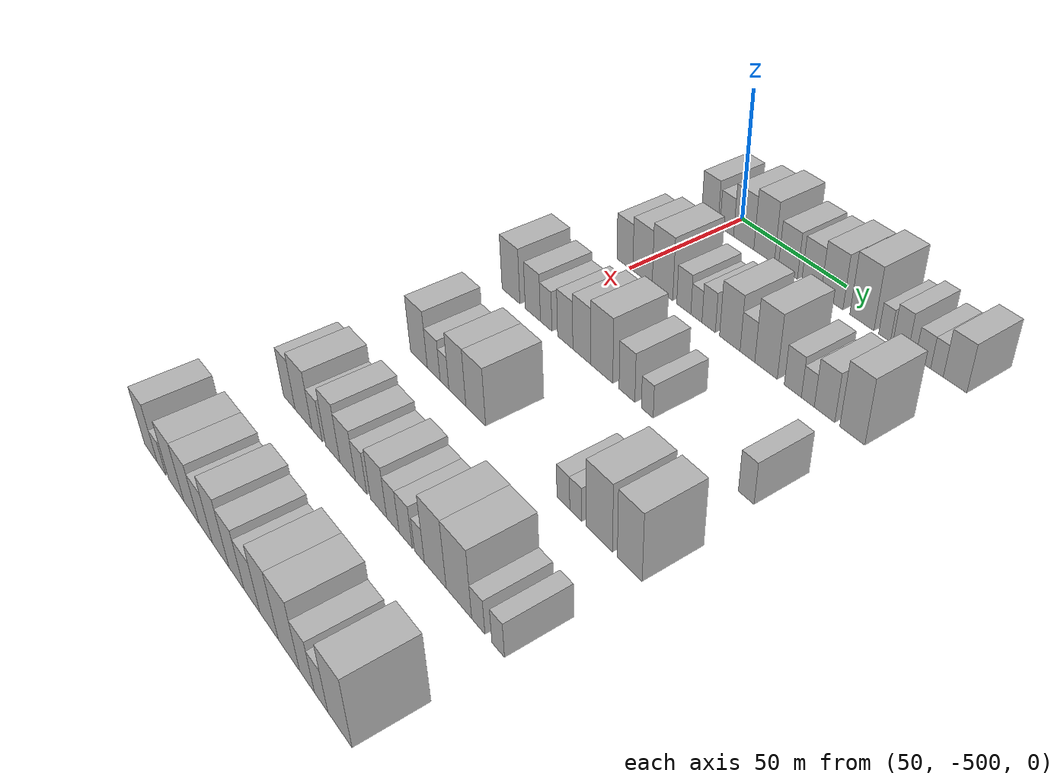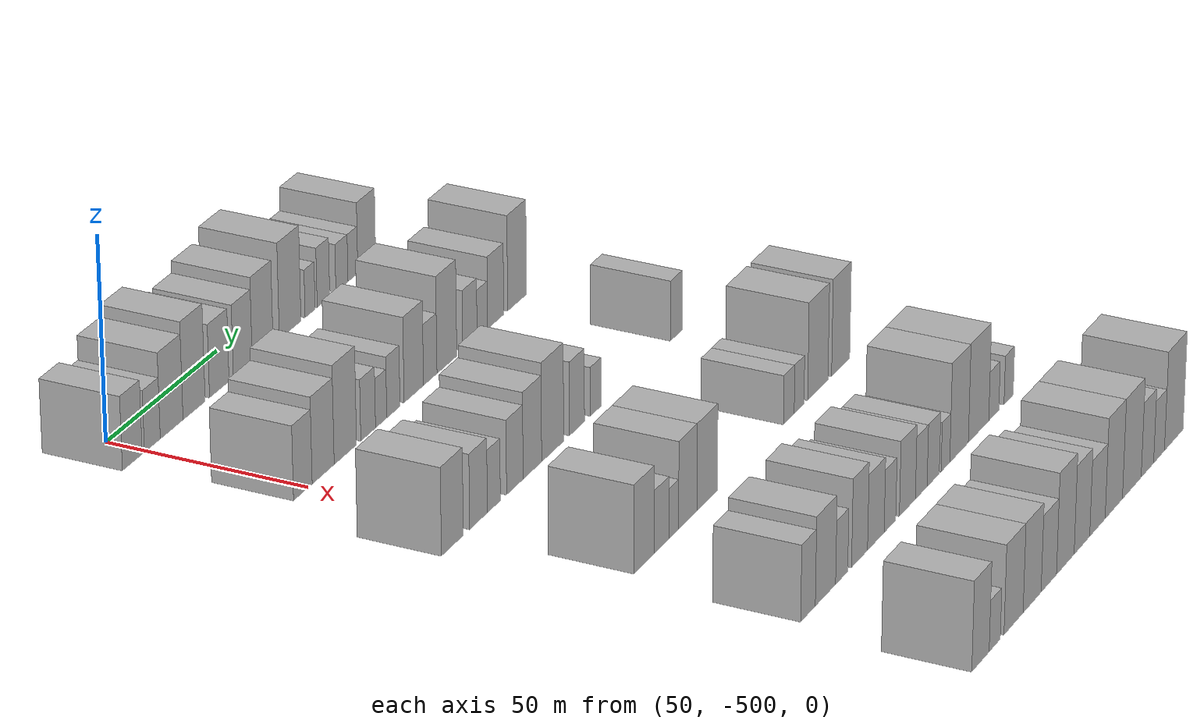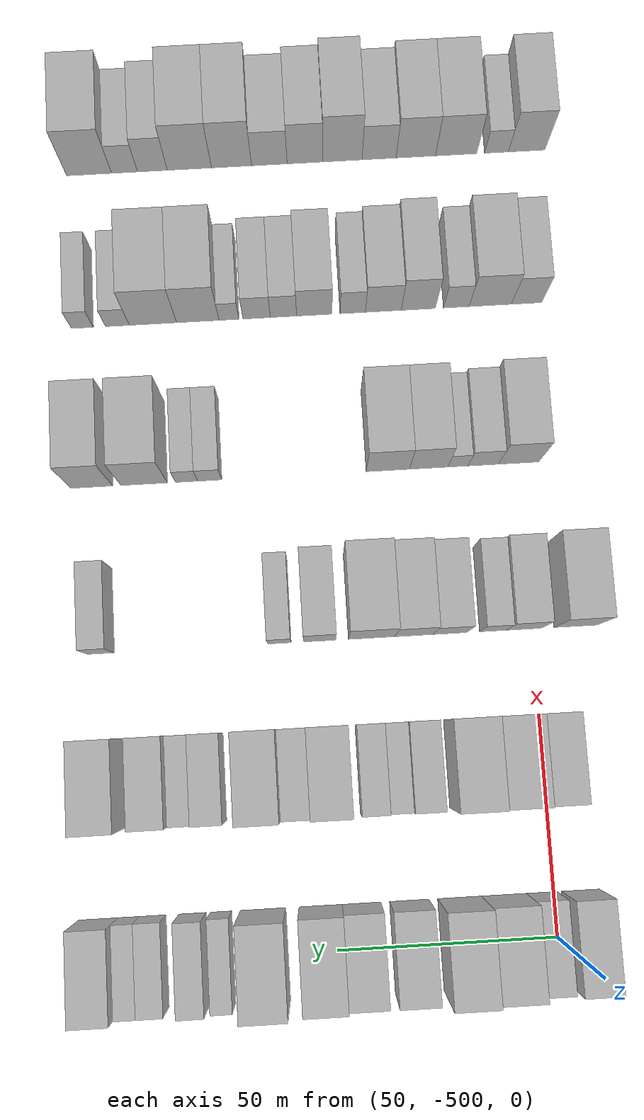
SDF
<sdf version="1.6">
 <world name="default">
  <model name="building_14">
   <static>1</static>
   <pose>50.0000 -506.0313 0 0.000000 0.000000 0.000000</pose>
   <link name="link">
    <pose>0 0 9.00 0 0 0</pose>
    <collision name="collision"><geometry><box><size>20.0000 8.6839 18.0000</size></box></geometry></collision>
    <visual name="visual">
     <cast_shadows>0</cast_shadows>
     <geometry><box><size>20.0000 8.6839 18.0000</size></box></geometry>
     <material>
      <script>
       <uri>model://HANNAS_wall/materials/scripts</uri>
       <uri>model://HANNAS_wall/materials/textures</uri>
       <name>vrc/HANNAS_wall</name>
      </script>
     </material>
    </visual>
   </link>
  </model>
  <model name="building_15">
   <static>1</static>
   <pose>50.0000 -497.1717 0 0.000000 0.000000 0.000000</pose>
   <link name="link">
    <pose>0 0 7.50 0 0 0</pose>
    <collision name="collision"><geometry><box><size>20.0000 7.0353 15.0000</size></box></geometry></collision>
    <visual name="visual">
     <cast_shadows>0</cast_shadows>
     <geometry><box><size>20.0000 7.0353 15.0000</size></box></geometry>
     <material>
      <script>
       <uri>model://HANNAS_wall/materials/scripts</uri>
       <uri>model://HANNAS_wall/materials/textures</uri>
       <name>vrc/HANNAS_wall</name>
      </script>
     </material>
    </visual>
   </link>
  </model>
  <model name="building_16">
   <static>1</static>
   <pose>50.0000 -488.5574 0 0.000000 0.000000 0.000000</pose>
   <link name="link">
    <pose>0 0 10.50 0 0 0</pose>
    <collision name="collision"><geometry><box><size>20.0000 10.1933 21.0000</size></box></geometry></collision>
    <visual name="visual">
     <cast_shadows>0</cast_shadows>
     <geometry><box><size>20.0000 10.1933 21.0000</size></box></geometry>
     <material>
      <script>
       <uri>model://HANNAS_wall/materials/scripts</uri>
       <uri>model://HANNAS_wall/materials/textures</uri>
       <name>vrc/HANNAS_wall</name>
      </script>
     </material>
    </visual>
   </link>
  </model>
  <model name="building_17">
   <static>1</static>
   <pose>50.0000 -478.4403 0 0.000000 0.000000 0.000000</pose>
   <link name="link">
    <pose>0 0 12.00 0 0 0</pose>
    <collision name="collision"><geometry><box><size>20.0000 10.0410 24.0000</size></box></geometry></collision>
    <visual name="visual">
     <cast_shadows>0</cast_shadows>
     <geometry><box><size>20.0000 10.0410 24.0000</size></box></geometry>
     <material>
      <script>
       <uri>model://HANNAS_wall/materials/scripts</uri>
       <uri>model://HANNAS_wall/materials/textures</uri>
       <name>vrc/HANNAS_wall</name>
      </script>
     </material>
    </visual>
   </link>
  </model>
  <model name="building_18">
   <static>1</static>
   <pose>50.0000 -466.9310 0 0.000000 0.000000 0.000000</pose>
   <link name="link">
    <pose>0 0 9.00 0 0 0</pose>
    <collision name="collision"><geometry><box><size>20.0000 8.9775 18.0000</size></box></geometry></collision>
    <visual name="visual">
     <cast_shadows>0</cast_shadows>
     <geometry><box><size>20.0000 8.9775 18.0000</size></box></geometry>
     <material>
      <script>
       <uri>model://HANNAS_wall/materials/scripts</uri>
       <uri>model://HANNAS_wall/materials/textures</uri>
       <name>vrc/HANNAS_wall</name>
      </script>
     </material>
    </visual>
   </link>
  </model>
  <model name="building_19">
   <static>1</static>
   <pose>50.0000 -456.0338 0 0.000000 0.000000 0.000000</pose>
   <link name="link">
    <pose>0 0 9.00 0 0 0</pose>
    <collision name="collision"><geometry><box><size>20.0000 8.8170 18.0000</size></box></geometry></collision>
    <visual name="visual">
     <cast_shadows>0</cast_shadows>
     <geometry><box><size>20.0000 8.8170 18.0000</size></box></geometry>
     <material>
      <script>
       <uri>model://HANNAS_wall/materials/scripts</uri>
       <uri>model://HANNAS_wall/materials/textures</uri>
       <name>vrc/HANNAS_wall</name>
      </script>
     </material>
    </visual>
   </link>
  </model>
  <model name="building_20">
   <static>1</static>
   <pose>50.0000 -446.7315 0 0.000000 0.000000 0.000000</pose>
   <link name="link">
    <pose>0 0 10.50 0 0 0</pose>
    <collision name="collision"><geometry><box><size>20.0000 9.7877 21.0000</size></box></geometry></collision>
    <visual name="visual">
     <cast_shadows>0</cast_shadows>
     <geometry><box><size>20.0000 9.7877 21.0000</size></box></geometry>
     <material>
      <script>
       <uri>model://HANNAS_wall/materials/scripts</uri>
       <uri>model://HANNAS_wall/materials/textures</uri>
       <name>vrc/HANNAS_wall</name>
      </script>
     </material>
    </visual>
   </link>
  </model>
  <model name="building_21">
   <static>1</static>
   <pose>50.0000 -433.6766 0 0.000000 0.000000 0.000000</pose>
   <link name="link">
    <pose>0 0 12.00 0 0 0</pose>
    <collision name="collision"><geometry><box><size>20.0000 10.3219 24.0000</size></box></geometry></collision>
    <visual name="visual">
     <cast_shadows>0</cast_shadows>
     <geometry><box><size>20.0000 10.3219 24.0000</size></box></geometry>
     <material>
      <script>
       <uri>model://HANNAS_wall/materials/scripts</uri>
       <uri>model://HANNAS_wall/materials/textures</uri>
       <name>vrc/HANNAS_wall</name>
      </script>
     </material>
    </visual>
   </link>
  </model>
  <model name="building_22">
   <static>1</static>
   <pose>50.0000 -424.0932 0 0.000000 0.000000 0.000000</pose>
   <link name="link">
    <pose>0 0 6.00 0 0 0</pose>
    <collision name="collision"><geometry><box><size>20.0000 4.8448 12.0000</size></box></geometry></collision>
    <visual name="visual">
     <cast_shadows>0</cast_shadows>
     <geometry><box><size>20.0000 4.8448 12.0000</size></box></geometry>
     <material>
      <script>
       <uri>model://HANNAS_wall/materials/scripts</uri>
       <uri>model://HANNAS_wall/materials/textures</uri>
       <name>vrc/HANNAS_wall</name>
      </script>
     </material>
    </visual>
   </link>
  </model>
  <model name="building_23">
   <static>1</static>
   <pose>50.0000 -417.6111 0 0.000000 0.000000 0.000000</pose>
   <link name="link">
    <pose>0 0 7.50 0 0 0</pose>
    <collision name="collision"><geometry><box><size>20.0000 6.1194 15.0000</size></box></geometry></collision>
    <visual name="visual">
     <cast_shadows>0</cast_shadows>
     <geometry><box><size>20.0000 6.1194 15.0000</size></box></geometry>
     <material>
      <script>
       <uri>model://HANNAS_wall/materials/scripts</uri>
       <uri>model://HANNAS_wall/materials/textures</uri>
       <name>vrc/HANNAS_wall</name>
      </script>
     </material>
    </visual>
   </link>
  </model>
  <model name="building_24">
   <static>1</static>
   <pose>50.0000 -408.5586 0 0.000000 0.000000 0.000000</pose>
   <link name="link">
    <pose>0 0 6.00 0 0 0</pose>
    <collision name="collision"><geometry><box><size>20.0000 5.9855 12.0000</size></box></geometry></collision>
    <visual name="visual">
     <cast_shadows>0</cast_shadows>
     <geometry><box><size>20.0000 5.9855 12.0000</size></box></geometry>
     <material>
      <script>
       <uri>model://HANNAS_wall/materials/scripts</uri>
       <uri>model://HANNAS_wall/materials/textures</uri>
       <name>vrc/HANNAS_wall</name>
      </script>
     </material>
    </visual>
   </link>
  </model>
  <model name="building_25">
   <static>1</static>
   <pose>50.0000 -403.1385 0 0.000000 0.000000 0.000000</pose>
   <link name="link">
    <pose>0 0 6.00 0 0 0</pose>
    <collision name="collision"><geometry><box><size>20.0000 4.8546 12.0000</size></box></geometry></collision>
    <visual name="visual">
     <cast_shadows>0</cast_shadows>
     <geometry><box><size>20.0000 4.8546 12.0000</size></box></geometry>
     <material>
      <script>
       <uri>model://HANNAS_wall/materials/scripts</uri>
       <uri>model://HANNAS_wall/materials/textures</uri>
       <name>vrc/HANNAS_wall</name>
      </script>
     </material>
    </visual>
   </link>
  </model>
  <model name="building_26">
   <static>1</static>
   <pose>50.0000 -396.2474 0 0.000000 0.000000 0.000000</pose>
   <link name="link">
    <pose>0 0 9.00 0 0 0</pose>
    <collision name="collision"><geometry><box><size>20.0000 8.9276 18.0000</size></box></geometry></collision>
    <visual name="visual">
     <cast_shadows>0</cast_shadows>
     <geometry><box><size>20.0000 8.9276 18.0000</size></box></geometry>
     <material>
      <script>
       <uri>model://HANNAS_wall/materials/scripts</uri>
       <uri>model://HANNAS_wall/materials/textures</uri>
       <name>vrc/HANNAS_wall</name>
      </script>
     </material>
    </visual>
   </link>
  </model>
  <model name="building_154">
   <static>1</static>
   <pose>90.0000 -502.5237 0 0.000000 0.000000 0.000000</pose>
   <link name="link">
    <pose>0 0 9.00 0 0 0</pose>
    <collision name="collision"><geometry><box><size>20.0000 8.5044 18.0000</size></box></geometry></collision>
    <visual name="visual">
     <cast_shadows>0</cast_shadows>
     <geometry><box><size>20.0000 8.5044 18.0000</size></box></geometry>
     <material>
      <script>
       <uri>model://HANNAS_wall/materials/scripts</uri>
       <uri>model://HANNAS_wall/materials/textures</uri>
       <name>vrc/HANNAS_wall</name>
      </script>
     </material>
    </visual>
   </link>
  </model>
  <model name="building_155">
   <static>1</static>
   <pose>90.0000 -493.2004 0 0.000000 0.000000 0.000000</pose>
   <link name="link">
    <pose>0 0 10.50 0 0 0</pose>
    <collision name="collision"><geometry><box><size>20.0000 10.1422 21.0000</size></box></geometry></collision>
    <visual name="visual">
     <cast_shadows>0</cast_shadows>
     <geometry><box><size>20.0000 10.1422 21.0000</size></box></geometry>
     <material>
      <script>
       <uri>model://HANNAS_wall/materials/scripts</uri>
       <uri>model://HANNAS_wall/materials/textures</uri>
       <name>vrc/HANNAS_wall</name>
      </script>
     </material>
    </visual>
   </link>
  </model>
  <model name="building_156">
   <static>1</static>
   <pose>90.0000 -482.9144 0 0.000000 0.000000 0.000000</pose>
   <link name="link">
    <pose>0 0 12.00 0 0 0</pose>
    <collision name="collision"><geometry><box><size>20.0000 10.4297 24.0000</size></box></geometry></collision>
    <visual name="visual">
     <cast_shadows>0</cast_shadows>
     <geometry><box><size>20.0000 10.4297 24.0000</size></box></geometry>
     <material>
      <script>
       <uri>model://HANNAS_wall/materials/scripts</uri>
       <uri>model://HANNAS_wall/materials/textures</uri>
       <name>vrc/HANNAS_wall</name>
      </script>
     </material>
    </visual>
   </link>
  </model>
  <model name="building_157">
   <static>1</static>
   <pose>90.0000 -472.2213 0 0.000000 0.000000 0.000000</pose>
   <link name="link">
    <pose>0 0 7.50 0 0 0</pose>
    <collision name="collision"><geometry><box><size>20.0000 6.9567 15.0000</size></box></geometry></collision>
    <visual name="visual">
     <cast_shadows>0</cast_shadows>
     <geometry><box><size>20.0000 6.9567 15.0000</size></box></geometry>
     <material>
      <script>
       <uri>model://HANNAS_wall/materials/scripts</uri>
       <uri>model://HANNAS_wall/materials/textures</uri>
       <name>vrc/HANNAS_wall</name>
      </script>
     </material>
    </visual>
   </link>
  </model>
  <model name="building_158">
   <static>1</static>
   <pose>90.0000 -466.0598 0 0.000000 0.000000 0.000000</pose>
   <link name="link">
    <pose>0 0 6.00 0 0 0</pose>
    <collision name="collision"><geometry><box><size>20.0000 5.3661 12.0000</size></box></geometry></collision>
    <visual name="visual">
     <cast_shadows>0</cast_shadows>
     <geometry><box><size>20.0000 5.3661 12.0000</size></box></geometry>
     <material>
      <script>
       <uri>model://HANNAS_wall/materials/scripts</uri>
       <uri>model://HANNAS_wall/materials/textures</uri>
       <name>vrc/HANNAS_wall</name>
      </script>
     </material>
    </visual>
   </link>
  </model>
  <model name="building_159">
   <static>1</static>
   <pose>90.0000 -460.2134 0 0.000000 0.000000 0.000000</pose>
   <link name="link">
    <pose>0 0 7.50 0 0 0</pose>
    <collision name="collision"><geometry><box><size>20.0000 6.3268 15.0000</size></box></geometry></collision>
    <visual name="visual">
     <cast_shadows>0</cast_shadows>
     <geometry><box><size>20.0000 6.3268 15.0000</size></box></geometry>
     <material>
      <script>
       <uri>model://HANNAS_wall/materials/scripts</uri>
       <uri>model://HANNAS_wall/materials/textures</uri>
       <name>vrc/HANNAS_wall</name>
      </script>
     </material>
    </visual>
   </link>
  </model>
  <model name="building_160">
   <static>1</static>
   <pose>90.0000 -450.3466 0 0.000000 0.000000 0.000000</pose>
   <link name="link">
    <pose>0 0 10.50 0 0 0</pose>
    <collision name="collision"><geometry><box><size>20.0000 9.4068 21.0000</size></box></geometry></collision>
    <visual name="visual">
     <cast_shadows>0</cast_shadows>
     <geometry><box><size>20.0000 9.4068 21.0000</size></box></geometry>
     <material>
      <script>
       <uri>model://HANNAS_wall/materials/scripts</uri>
       <uri>model://HANNAS_wall/materials/textures</uri>
       <name>vrc/HANNAS_wall</name>
      </script>
     </material>
    </visual>
   </link>
  </model>
  <model name="building_161">
   <static>1</static>
   <pose>90.0000 -442.3463 0 0.000000 0.000000 0.000000</pose>
   <link name="link">
    <pose>0 0 7.50 0 0 0</pose>
    <collision name="collision"><geometry><box><size>20.0000 6.5937 15.0000</size></box></geometry></collision>
    <visual name="visual">
     <cast_shadows>0</cast_shadows>
     <geometry><box><size>20.0000 6.5937 15.0000</size></box></geometry>
     <material>
      <script>
       <uri>model://HANNAS_wall/materials/scripts</uri>
       <uri>model://HANNAS_wall/materials/textures</uri>
       <name>vrc/HANNAS_wall</name>
      </script>
     </material>
    </visual>
   </link>
  </model>
  <model name="building_162">
   <static>1</static>
   <pose>90.0000 -434.1598 0 0.000000 0.000000 0.000000</pose>
   <link name="link">
    <pose>0 0 12.00 0 0 0</pose>
    <collision name="collision"><geometry><box><size>20.0000 9.7794 24.0000</size></box></geometry></collision>
    <visual name="visual">
     <cast_shadows>0</cast_shadows>
     <geometry><box><size>20.0000 9.7794 24.0000</size></box></geometry>
     <material>
      <script>
       <uri>model://HANNAS_wall/materials/scripts</uri>
       <uri>model://HANNAS_wall/materials/textures</uri>
       <name>vrc/HANNAS_wall</name>
      </script>
     </material>
    </visual>
   </link>
  </model>
  <model name="building_163">
   <static>1</static>
   <pose>90.0000 -422.6911 0 0.000000 0.000000 0.000000</pose>
   <link name="link">
    <pose>0 0 7.50 0 0 0</pose>
    <collision name="collision"><geometry><box><size>20.0000 7.1581 15.0000</size></box></geometry></collision>
    <visual name="visual">
     <cast_shadows>0</cast_shadows>
     <geometry><box><size>20.0000 7.1581 15.0000</size></box></geometry>
     <material>
      <script>
       <uri>model://HANNAS_wall/materials/scripts</uri>
       <uri>model://HANNAS_wall/materials/textures</uri>
       <name>vrc/HANNAS_wall</name>
      </script>
     </material>
    </visual>
   </link>
  </model>
  <model name="building_164">
   <static>1</static>
   <pose>90.0000 -416.4610 0 0.000000 0.000000 0.000000</pose>
   <link name="link">
    <pose>0 0 6.00 0 0 0</pose>
    <collision name="collision"><geometry><box><size>20.0000 5.3021 12.0000</size></box></geometry></collision>
    <visual name="visual">
     <cast_shadows>0</cast_shadows>
     <geometry><box><size>20.0000 5.3021 12.0000</size></box></geometry>
     <material>
      <script>
       <uri>model://HANNAS_wall/materials/scripts</uri>
       <uri>model://HANNAS_wall/materials/textures</uri>
       <name>vrc/HANNAS_wall</name>
      </script>
     </material>
    </visual>
   </link>
  </model>
  <model name="building_165">
   <static>1</static>
   <pose>90.0000 -409.7099 0 0.000000 0.000000 0.000000</pose>
   <link name="link">
    <pose>0 0 9.00 0 0 0</pose>
    <collision name="collision"><geometry><box><size>20.0000 8.2001 18.0000</size></box></geometry></collision>
    <visual name="visual">
     <cast_shadows>0</cast_shadows>
     <geometry><box><size>20.0000 8.2001 18.0000</size></box></geometry>
     <material>
      <script>
       <uri>model://HANNAS_wall/materials/scripts</uri>
       <uri>model://HANNAS_wall/materials/textures</uri>
       <name>vrc/HANNAS_wall</name>
      </script>
     </material>
    </visual>
   </link>
  </model>
  <model name="building_166">
   <static>1</static>
   <pose>90.0000 -398.7681 0 0.000000 0.000000 0.000000</pose>
   <link name="link">
    <pose>0 0 12.00 0 0 0</pose>
    <collision name="collision"><geometry><box><size>20.0000 9.6835 24.0000</size></box></geometry></collision>
    <visual name="visual">
     <cast_shadows>0</cast_shadows>
     <geometry><box><size>20.0000 9.6835 24.0000</size></box></geometry>
     <material>
      <script>
       <uri>model://HANNAS_wall/materials/scripts</uri>
       <uri>model://HANNAS_wall/materials/textures</uri>
       <name>vrc/HANNAS_wall</name>
      </script>
     </material>
    </visual>
   </link>
  </model>
  <model name="building_290">
   <static>1</static>
   <pose>130.0000 -510.4345 0 0.000000 0.000000 0.000000</pose>
   <link name="link">
    <pose>0 0 10.50 0 0 0</pose>
    <collision name="collision"><geometry><box><size>20.0000 10.2358 21.0000</size></box></geometry></collision>
    <visual name="visual">
     <cast_shadows>0</cast_shadows>
     <geometry><box><size>20.0000 10.2358 21.0000</size></box></geometry>
     <material>
      <script>
       <uri>model://HANNAS_wall/materials/scripts</uri>
       <uri>model://HANNAS_wall/materials/textures</uri>
       <name>vrc/HANNAS_wall</name>
      </script>
     </material>
    </visual>
   </link>
  </model>
  <model name="building_291">
   <static>1</static>
   <pose>130.0000 -498.1174 0 0.000000 0.000000 0.000000</pose>
   <link name="link">
    <pose>0 0 9.00 0 0 0</pose>
    <collision name="collision"><geometry><box><size>20.0000 8.3984 18.0000</size></box></geometry></collision>
    <visual name="visual">
     <cast_shadows>0</cast_shadows>
     <geometry><box><size>20.0000 8.3984 18.0000</size></box></geometry>
     <material>
      <script>
       <uri>model://HANNAS_wall/materials/scripts</uri>
       <uri>model://HANNAS_wall/materials/textures</uri>
       <name>vrc/HANNAS_wall</name>
      </script>
     </material>
    </visual>
   </link>
  </model>
  <model name="building_292">
   <static>1</static>
   <pose>130.0000 -490.8123 0 0.000000 0.000000 0.000000</pose>
   <link name="link">
    <pose>0 0 7.50 0 0 0</pose>
    <collision name="collision"><geometry><box><size>20.0000 6.2118 15.0000</size></box></geometry></collision>
    <visual name="visual">
     <cast_shadows>0</cast_shadows>
     <geometry><box><size>20.0000 6.2118 15.0000</size></box></geometry>
     <material>
      <script>
       <uri>model://HANNAS_wall/materials/scripts</uri>
       <uri>model://HANNAS_wall/materials/textures</uri>
       <name>vrc/HANNAS_wall</name>
      </script>
     </material>
    </visual>
   </link>
  </model>
  <model name="building_293">
   <static>1</static>
   <pose>130.0000 -480.6989 0 0.000000 0.000000 0.000000</pose>
   <link name="link">
    <pose>0 0 9.00 0 0 0</pose>
    <collision name="collision"><geometry><box><size>20.0000 8.0152 18.0000</size></box></geometry></collision>
    <visual name="visual">
     <cast_shadows>0</cast_shadows>
     <geometry><box><size>20.0000 8.0152 18.0000</size></box></geometry>
     <material>
      <script>
       <uri>model://HANNAS_wall/materials/scripts</uri>
       <uri>model://HANNAS_wall/materials/textures</uri>
       <name>vrc/HANNAS_wall</name>
      </script>
     </material>
    </visual>
   </link>
  </model>
  <model name="building_294">
   <static>1</static>
   <pose>130.0000 -472.1546 0 0.000000 0.000000 0.000000</pose>
   <link name="link">
    <pose>0 0 10.50 0 0 0</pose>
    <collision name="collision"><geometry><box><size>20.0000 9.0733 21.0000</size></box></geometry></collision>
    <visual name="visual">
     <cast_shadows>0</cast_shadows>
     <geometry><box><size>20.0000 9.0733 21.0000</size></box></geometry>
     <material>
      <script>
       <uri>model://HANNAS_wall/materials/scripts</uri>
       <uri>model://HANNAS_wall/materials/textures</uri>
       <name>vrc/HANNAS_wall</name>
      </script>
     </material>
    </visual>
   </link>
  </model>
  <model name="building_295">
   <static>1</static>
   <pose>130.0000 -462.1730 0 0.000000 0.000000 0.000000</pose>
   <link name="link">
    <pose>0 0 12.00 0 0 0</pose>
    <collision name="collision"><geometry><box><size>20.0000 10.8899 24.0000</size></box></geometry></collision>
    <visual name="visual">
     <cast_shadows>0</cast_shadows>
     <geometry><box><size>20.0000 10.8899 24.0000</size></box></geometry>
     <material>
      <script>
       <uri>model://HANNAS_wall/materials/scripts</uri>
       <uri>model://HANNAS_wall/materials/textures</uri>
       <name>vrc/HANNAS_wall</name>
      </script>
     </material>
    </visual>
   </link>
  </model>
  <model name="building_296">
   <static>1</static>
   <pose>130.0000 -449.9906 0 0.000000 0.000000 0.000000</pose>
   <link name="link">
    <pose>0 0 9.00 0 0 0</pose>
    <collision name="collision"><geometry><box><size>20.0000 7.4749 18.0000</size></box></geometry></collision>
    <visual name="visual">
     <cast_shadows>0</cast_shadows>
     <geometry><box><size>20.0000 7.4749 18.0000</size></box></geometry>
     <material>
      <script>
       <uri>model://HANNAS_wall/materials/scripts</uri>
       <uri>model://HANNAS_wall/materials/textures</uri>
       <name>vrc/HANNAS_wall</name>
      </script>
     </material>
    </visual>
   </link>
  </model>
  <model name="building_297">
   <static>1</static>
   <pose>130.0000 -440.5327 0 0.000000 0.000000 0.000000</pose>
   <link name="link">
    <pose>0 0 6.00 0 0 0</pose>
    <collision name="collision"><geometry><box><size>20.0000 5.4409 12.0000</size></box></geometry></collision>
    <visual name="visual">
     <cast_shadows>0</cast_shadows>
     <geometry><box><size>20.0000 5.4409 12.0000</size></box></geometry>
     <material>
      <script>
       <uri>model://HANNAS_wall/materials/scripts</uri>
       <uri>model://HANNAS_wall/materials/textures</uri>
       <name>vrc/HANNAS_wall</name>
      </script>
     </material>
    </visual>
   </link>
  </model>
  <model name="building_298">
   <static>1</static>
   <pose>130.0000 -398.5139 0 0.000000 0.000000 0.000000</pose>
   <link name="link">
    <pose>0 0 7.50 0 0 0</pose>
    <collision name="collision"><geometry><box><size>20.0000 6.1989 15.0000</size></box></geometry></collision>
    <visual name="visual">
     <cast_shadows>0</cast_shadows>
     <geometry><box><size>20.0000 6.1989 15.0000</size></box></geometry>
     <material>
      <script>
       <uri>model://HANNAS_wall/materials/scripts</uri>
       <uri>model://HANNAS_wall/materials/textures</uri>
       <name>vrc/HANNAS_wall</name>
      </script>
     </material>
    </visual>
   </link>
  </model>
  <model name="building_420">
   <static>1</static>
   <pose>170.0000 -500.3041 0 0.000000 0.000000 0.000000</pose>
   <link name="link">
    <pose>0 0 10.50 0 0 0</pose>
    <collision name="collision"><geometry><box><size>20.0000 9.8438 21.0000</size></box></geometry></collision>
    <visual name="visual">
     <cast_shadows>0</cast_shadows>
     <geometry><box><size>20.0000 9.8438 21.0000</size></box></geometry>
     <material>
      <script>
       <uri>model://HANNAS_wall/materials/scripts</uri>
       <uri>model://HANNAS_wall/materials/textures</uri>
       <name>vrc/HANNAS_wall</name>
      </script>
     </material>
    </visual>
   </link>
  </model>
  <model name="building_421">
   <static>1</static>
   <pose>170.0000 -491.7202 0 0.000000 0.000000 0.000000</pose>
   <link name="link">
    <pose>0 0 7.50 0 0 0</pose>
    <collision name="collision"><geometry><box><size>20.0000 7.3239 15.0000</size></box></geometry></collision>
    <visual name="visual">
     <cast_shadows>0</cast_shadows>
     <geometry><box><size>20.0000 7.3239 15.0000</size></box></geometry>
     <material>
      <script>
       <uri>model://HANNAS_wall/materials/scripts</uri>
       <uri>model://HANNAS_wall/materials/textures</uri>
       <name>vrc/HANNAS_wall</name>
      </script>
     </material>
    </visual>
   </link>
  </model>
  <model name="building_422">
   <static>1</static>
   <pose>170.0000 -485.6136 0 0.000000 0.000000 0.000000</pose>
   <link name="link">
    <pose>0 0 6.00 0 0 0</pose>
    <collision name="collision"><geometry><box><size>20.0000 4.8893 12.0000</size></box></geometry></collision>
    <visual name="visual">
     <cast_shadows>0</cast_shadows>
     <geometry><box><size>20.0000 4.8893 12.0000</size></box></geometry>
     <material>
      <script>
       <uri>model://HANNAS_wall/materials/scripts</uri>
       <uri>model://HANNAS_wall/materials/textures</uri>
       <name>vrc/HANNAS_wall</name>
      </script>
     </material>
    </visual>
   </link>
  </model>
  <model name="building_423">
   <static>1</static>
   <pose>170.0000 -478.5330 0 0.000000 0.000000 0.000000</pose>
   <link name="link">
    <pose>0 0 10.50 0 0 0</pose>
    <collision name="collision"><geometry><box><size>20.0000 9.2718 21.0000</size></box></geometry></collision>
    <visual name="visual">
     <cast_shadows>0</cast_shadows>
     <geometry><box><size>20.0000 9.2718 21.0000</size></box></geometry>
     <material>
      <script>
       <uri>model://HANNAS_wall/materials/scripts</uri>
       <uri>model://HANNAS_wall/materials/textures</uri>
       <name>vrc/HANNAS_wall</name>
      </script>
     </material>
    </visual>
   </link>
  </model>
  <model name="building_424">
   <static>1</static>
   <pose>170.0000 -468.6804 0 0.000000 0.000000 0.000000</pose>
   <link name="link">
    <pose>0 0 10.50 0 0 0</pose>
    <collision name="collision"><geometry><box><size>20.0000 10.4334 21.0000</size></box></geometry></collision>
    <visual name="visual">
     <cast_shadows>0</cast_shadows>
     <geometry><box><size>20.0000 10.4334 21.0000</size></box></geometry>
     <material>
      <script>
       <uri>model://HANNAS_wall/materials/scripts</uri>
       <uri>model://HANNAS_wall/materials/textures</uri>
       <name>vrc/HANNAS_wall</name>
      </script>
     </material>
    </visual>
   </link>
  </model>
  <model name="building_425">
   <static>1</static>
   <pose>170.0000 -425.7801 0 0.000000 0.000000 0.000000</pose>
   <link name="link">
    <pose>0 0 6.00 0 0 0</pose>
    <collision name="collision"><geometry><box><size>20.0000 5.7891 12.0000</size></box></geometry></collision>
    <visual name="visual">
     <cast_shadows>0</cast_shadows>
     <geometry><box><size>20.0000 5.7891 12.0000</size></box></geometry>
     <material>
      <script>
       <uri>model://HANNAS_wall/materials/scripts</uri>
       <uri>model://HANNAS_wall/materials/textures</uri>
       <name>vrc/HANNAS_wall</name>
      </script>
     </material>
    </visual>
   </link>
  </model>
  <model name="building_426">
   <static>1</static>
   <pose>170.0000 -420.2336 0 0.000000 0.000000 0.000000</pose>
   <link name="link">
    <pose>0 0 6.00 0 0 0</pose>
    <collision name="collision"><geometry><box><size>20.0000 5.3038 12.0000</size></box></geometry></collision>
    <visual name="visual">
     <cast_shadows>0</cast_shadows>
     <geometry><box><size>20.0000 5.3038 12.0000</size></box></geometry>
     <material>
      <script>
       <uri>model://HANNAS_wall/materials/scripts</uri>
       <uri>model://HANNAS_wall/materials/textures</uri>
       <name>vrc/HANNAS_wall</name>
      </script>
     </material>
    </visual>
   </link>
  </model>
  <model name="building_427">
   <static>1</static>
   <pose>170.0000 -410.0076 0 0.000000 0.000000 0.000000</pose>
   <link name="link">
    <pose>0 0 12.00 0 0 0</pose>
    <collision name="collision"><geometry><box><size>20.0000 11.1482 24.0000</size></box></geometry></collision>
    <visual name="visual">
     <cast_shadows>0</cast_shadows>
     <geometry><box><size>20.0000 11.1482 24.0000</size></box></geometry>
     <material>
      <script>
       <uri>model://HANNAS_wall/materials/scripts</uri>
       <uri>model://HANNAS_wall/materials/textures</uri>
       <name>vrc/HANNAS_wall</name>
      </script>
     </material>
    </visual>
   </link>
  </model>
  <model name="building_428">
   <static>1</static>
   <pose>170.0000 -397.3972 0 0.000000 0.000000 0.000000</pose>
   <link name="link">
    <pose>0 0 12.00 0 0 0</pose>
    <collision name="collision"><geometry><box><size>20.0000 10.0727 24.0000</size></box></geometry></collision>
    <visual name="visual">
     <cast_shadows>0</cast_shadows>
     <geometry><box><size>20.0000 10.0727 24.0000</size></box></geometry>
     <material>
      <script>
       <uri>model://HANNAS_wall/materials/scripts</uri>
       <uri>model://HANNAS_wall/materials/textures</uri>
       <name>vrc/HANNAS_wall</name>
      </script>
     </material>
    </visual>
   </link>
  </model>
  <model name="building_542">
   <static>1</static>
   <pose>210.0000 -505.5894 0 0.000000 0.000000 0.000000</pose>
   <link name="link">
    <pose>0 0 9.00 0 0 0</pose>
    <collision name="collision"><geometry><box><size>20.0000 7.4750 18.0000</size></box></geometry></collision>
    <visual name="visual">
     <cast_shadows>0</cast_shadows>
     <geometry><box><size>20.0000 7.4750 18.0000</size></box></geometry>
     <material>
      <script>
       <uri>model://HANNAS_wall/materials/scripts</uri>
       <uri>model://HANNAS_wall/materials/textures</uri>
       <name>vrc/HANNAS_wall</name>
      </script>
     </material>
    </visual>
   </link>
  </model>
  <model name="building_543">
   <static>1</static>
   <pose>210.0000 -496.6185 0 0.000000 0.000000 0.000000</pose>
   <link name="link">
    <pose>0 0 10.50 0 0 0</pose>
    <collision name="collision"><geometry><box><size>20.0000 10.4668 21.0000</size></box></geometry></collision>
    <visual name="visual">
     <cast_shadows>0</cast_shadows>
     <geometry><box><size>20.0000 10.4668 21.0000</size></box></geometry>
     <material>
      <script>
       <uri>model://HANNAS_wall/materials/scripts</uri>
       <uri>model://HANNAS_wall/materials/textures</uri>
       <name>vrc/HANNAS_wall</name>
      </script>
     </material>
    </visual>
   </link>
  </model>
  <model name="building_544">
   <static>1</static>
   <pose>210.0000 -488.2242 0 0.000000 0.000000 0.000000</pose>
   <link name="link">
    <pose>0 0 7.50 0 0 0</pose>
    <collision name="collision"><geometry><box><size>20.0000 6.3219 15.0000</size></box></geometry></collision>
    <visual name="visual">
     <cast_shadows>0</cast_shadows>
     <geometry><box><size>20.0000 6.3219 15.0000</size></box></geometry>
     <material>
      <script>
       <uri>model://HANNAS_wall/materials/scripts</uri>
       <uri>model://HANNAS_wall/materials/textures</uri>
       <name>vrc/HANNAS_wall</name>
      </script>
     </material>
    </visual>
   </link>
  </model>
  <model name="building_545">
   <static>1</static>
   <pose>210.0000 -478.8458 0 0.000000 0.000000 0.000000</pose>
   <link name="link">
    <pose>0 0 10.50 0 0 0</pose>
    <collision name="collision"><geometry><box><size>20.0000 8.4348 21.0000</size></box></geometry></collision>
    <visual name="visual">
     <cast_shadows>0</cast_shadows>
     <geometry><box><size>20.0000 8.4348 21.0000</size></box></geometry>
     <material>
      <script>
       <uri>model://HANNAS_wall/materials/scripts</uri>
       <uri>model://HANNAS_wall/materials/textures</uri>
       <name>vrc/HANNAS_wall</name>
      </script>
     </material>
    </visual>
   </link>
  </model>
  <model name="building_546">
   <static>1</static>
   <pose>210.0000 -470.2062 0 0.000000 0.000000 0.000000</pose>
   <link name="link">
    <pose>0 0 9.00 0 0 0</pose>
    <collision name="collision"><geometry><box><size>20.0000 8.8444 18.0000</size></box></geometry></collision>
    <visual name="visual">
     <cast_shadows>0</cast_shadows>
     <geometry><box><size>20.0000 8.8444 18.0000</size></box></geometry>
     <material>
      <script>
       <uri>model://HANNAS_wall/materials/scripts</uri>
       <uri>model://HANNAS_wall/materials/textures</uri>
       <name>vrc/HANNAS_wall</name>
      </script>
     </material>
    </visual>
   </link>
  </model>
  <model name="building_547">
   <static>1</static>
   <pose>210.0000 -462.6698 0 0.000000 0.000000 0.000000</pose>
   <link name="link">
    <pose>0 0 7.50 0 0 0</pose>
    <collision name="collision"><geometry><box><size>20.0000 6.2285 15.0000</size></box></geometry></collision>
    <visual name="visual">
     <cast_shadows>0</cast_shadows>
     <geometry><box><size>20.0000 6.2285 15.0000</size></box></geometry>
     <material>
      <script>
       <uri>model://HANNAS_wall/materials/scripts</uri>
       <uri>model://HANNAS_wall/materials/textures</uri>
       <name>vrc/HANNAS_wall</name>
      </script>
     </material>
    </visual>
   </link>
  </model>
  <model name="building_548">
   <static>1</static>
   <pose>210.0000 -453.2025 0 0.000000 0.000000 0.000000</pose>
   <link name="link">
    <pose>0 0 9.00 0 0 0</pose>
    <collision name="collision"><geometry><box><size>20.0000 8.7060 18.0000</size></box></geometry></collision>
    <visual name="visual">
     <cast_shadows>0</cast_shadows>
     <geometry><box><size>20.0000 8.7060 18.0000</size></box></geometry>
     <material>
      <script>
       <uri>model://HANNAS_wall/materials/scripts</uri>
       <uri>model://HANNAS_wall/materials/textures</uri>
       <name>vrc/HANNAS_wall</name>
      </script>
     </material>
    </visual>
   </link>
  </model>
  <model name="building_549">
   <static>1</static>
   <pose>210.0000 -445.6326 0 0.000000 0.000000 0.000000</pose>
   <link name="link">
    <pose>0 0 7.50 0 0 0</pose>
    <collision name="collision"><geometry><box><size>20.0000 6.4340 15.0000</size></box></geometry></collision>
    <visual name="visual">
     <cast_shadows>0</cast_shadows>
     <geometry><box><size>20.0000 6.4340 15.0000</size></box></geometry>
     <material>
      <script>
       <uri>model://HANNAS_wall/materials/scripts</uri>
       <uri>model://HANNAS_wall/materials/textures</uri>
       <name>vrc/HANNAS_wall</name>
      </script>
     </material>
    </visual>
   </link>
  </model>
  <model name="building_550">
   <static>1</static>
   <pose>210.0000 -439.0406 0 0.000000 0.000000 0.000000</pose>
   <link name="link">
    <pose>0 0 7.50 0 0 0</pose>
    <collision name="collision"><geometry><box><size>20.0000 6.7499 15.0000</size></box></geometry></collision>
    <visual name="visual">
     <cast_shadows>0</cast_shadows>
     <geometry><box><size>20.0000 6.7499 15.0000</size></box></geometry>
     <material>
      <script>
       <uri>model://HANNAS_wall/materials/scripts</uri>
       <uri>model://HANNAS_wall/materials/textures</uri>
       <name>vrc/HANNAS_wall</name>
      </script>
     </material>
    </visual>
   </link>
  </model>
  <model name="building_551">
   <static>1</static>
   <pose>210.0000 -432.2293 0 0.000000 0.000000 0.000000</pose>
   <link name="link">
    <pose>0 0 6.00 0 0 0</pose>
    <collision name="collision"><geometry><box><size>20.0000 4.8726 12.0000</size></box></geometry></collision>
    <visual name="visual">
     <cast_shadows>0</cast_shadows>
     <geometry><box><size>20.0000 4.8726 12.0000</size></box></geometry>
     <material>
      <script>
       <uri>model://HANNAS_wall/materials/scripts</uri>
       <uri>model://HANNAS_wall/materials/textures</uri>
       <name>vrc/HANNAS_wall</name>
      </script>
     </material>
    </visual>
   </link>
  </model>
  <model name="building_552">
   <static>1</static>
   <pose>210.0000 -424.5648 0 0.000000 0.000000 0.000000</pose>
   <link name="link">
    <pose>0 0 12.00 0 0 0</pose>
    <collision name="collision"><geometry><box><size>20.0000 10.4565 24.0000</size></box></geometry></collision>
    <visual name="visual">
     <cast_shadows>0</cast_shadows>
     <geometry><box><size>20.0000 10.4565 24.0000</size></box></geometry>
     <material>
      <script>
       <uri>model://HANNAS_wall/materials/scripts</uri>
       <uri>model://HANNAS_wall/materials/textures</uri>
       <name>vrc/HANNAS_wall</name>
      </script>
     </material>
    </visual>
   </link>
  </model>
  <model name="building_553">
   <static>1</static>
   <pose>210.0000 -413.5132 0 0.000000 0.000000 0.000000</pose>
   <link name="link">
    <pose>0 0 12.00 0 0 0</pose>
    <collision name="collision"><geometry><box><size>20.0000 11.6467 24.0000</size></box></geometry></collision>
    <visual name="visual">
     <cast_shadows>0</cast_shadows>
     <geometry><box><size>20.0000 11.6467 24.0000</size></box></geometry>
     <material>
      <script>
       <uri>model://HANNAS_wall/materials/scripts</uri>
       <uri>model://HANNAS_wall/materials/textures</uri>
       <name>vrc/HANNAS_wall</name>
      </script>
     </material>
    </visual>
   </link>
  </model>
  <model name="building_554">
   <static>1</static>
   <pose>210.0000 -404.7720 0 0.000000 0.000000 0.000000</pose>
   <link name="link">
    <pose>0 0 6.00 0 0 0</pose>
    <collision name="collision"><geometry><box><size>20.0000 5.8357 12.0000</size></box></geometry></collision>
    <visual name="visual">
     <cast_shadows>0</cast_shadows>
     <geometry><box><size>20.0000 5.8357 12.0000</size></box></geometry>
     <material>
      <script>
       <uri>model://HANNAS_wall/materials/scripts</uri>
       <uri>model://HANNAS_wall/materials/textures</uri>
       <name>vrc/HANNAS_wall</name>
      </script>
     </material>
    </visual>
   </link>
  </model>
  <model name="building_555">
   <static>1</static>
   <pose>210.0000 -396.1696 0 0.000000 0.000000 0.000000</pose>
   <link name="link">
    <pose>0 0 6.00 0 0 0</pose>
    <collision name="collision"><geometry><box><size>20.0000 5.3689 12.0000</size></box></geometry></collision>
    <visual name="visual">
     <cast_shadows>0</cast_shadows>
     <geometry><box><size>20.0000 5.3689 12.0000</size></box></geometry>
     <material>
      <script>
       <uri>model://HANNAS_wall/materials/scripts</uri>
       <uri>model://HANNAS_wall/materials/textures</uri>
       <name>vrc/HANNAS_wall</name>
      </script>
     </material>
    </visual>
   </link>
  </model>
  <model name="building_666">
   <static>1</static>
   <pose>250.0000 -509.0166 0 0.000000 0.000000 0.000000</pose>
   <link name="link">
    <pose>0 0 10.50 0 0 0</pose>
    <collision name="collision"><geometry><box><size>20.0000 9.2454 21.0000</size></box></geometry></collision>
    <visual name="visual">
     <cast_shadows>0</cast_shadows>
     <geometry><box><size>20.0000 9.2454 21.0000</size></box></geometry>
     <material>
      <script>
       <uri>model://HANNAS_wall/materials/scripts</uri>
       <uri>model://HANNAS_wall/materials/textures</uri>
       <name>vrc/HANNAS_wall</name>
      </script>
     </material>
    </visual>
   </link>
  </model>
  <model name="building_667">
   <static>1</static>
   <pose>250.0000 -501.4026 0 0.000000 0.000000 0.000000</pose>
   <link name="link">
    <pose>0 0 6.00 0 0 0</pose>
    <collision name="collision"><geometry><box><size>20.0000 5.9825 12.0000</size></box></geometry></collision>
    <visual name="visual">
     <cast_shadows>0</cast_shadows>
     <geometry><box><size>20.0000 5.9825 12.0000</size></box></geometry>
     <material>
      <script>
       <uri>model://HANNAS_wall/materials/scripts</uri>
       <uri>model://HANNAS_wall/materials/textures</uri>
       <name>vrc/HANNAS_wall</name>
      </script>
     </material>
    </visual>
   </link>
  </model>
  <model name="building_668">
   <static>1</static>
   <pose>250.0000 -491.2045 0 0.000000 0.000000 0.000000</pose>
   <link name="link">
    <pose>0 0 10.50 0 0 0</pose>
    <collision name="collision"><geometry><box><size>20.0000 10.4137 21.0000</size></box></geometry></collision>
    <visual name="visual">
     <cast_shadows>0</cast_shadows>
     <geometry><box><size>20.0000 10.4137 21.0000</size></box></geometry>
     <material>
      <script>
       <uri>model://HANNAS_wall/materials/scripts</uri>
       <uri>model://HANNAS_wall/materials/textures</uri>
       <name>vrc/HANNAS_wall</name>
      </script>
     </material>
    </visual>
   </link>
  </model>
  <model name="building_669">
   <static>1</static>
   <pose>250.0000 -481.0363 0 0.000000 0.000000 0.000000</pose>
   <link name="link">
    <pose>0 0 10.50 0 0 0</pose>
    <collision name="collision"><geometry><box><size>20.0000 9.9226 21.0000</size></box></geometry></collision>
    <visual name="visual">
     <cast_shadows>0</cast_shadows>
     <geometry><box><size>20.0000 9.9226 21.0000</size></box></geometry>
     <material>
      <script>
       <uri>model://HANNAS_wall/materials/scripts</uri>
       <uri>model://HANNAS_wall/materials/textures</uri>
       <name>vrc/HANNAS_wall</name>
      </script>
     </material>
    </visual>
   </link>
  </model>
  <model name="building_670">
   <static>1</static>
   <pose>250.0000 -471.7764 0 0.000000 0.000000 0.000000</pose>
   <link name="link">
    <pose>0 0 9.00 0 0 0</pose>
    <collision name="collision"><geometry><box><size>20.0000 8.5973 18.0000</size></box></geometry></collision>
    <visual name="visual">
     <cast_shadows>0</cast_shadows>
     <geometry><box><size>20.0000 8.5973 18.0000</size></box></geometry>
     <material>
      <script>
       <uri>model://HANNAS_wall/materials/scripts</uri>
       <uri>model://HANNAS_wall/materials/textures</uri>
       <name>vrc/HANNAS_wall</name>
      </script>
     </material>
    </visual>
   </link>
  </model>
  <model name="building_671">
   <static>1</static>
   <pose>250.0000 -462.4955 0 0.000000 0.000000 0.000000</pose>
   <link name="link">
    <pose>0 0 12.00 0 0 0</pose>
    <collision name="collision"><geometry><box><size>20.0000 9.9645 24.0000</size></box></geometry></collision>
    <visual name="visual">
     <cast_shadows>0</cast_shadows>
     <geometry><box><size>20.0000 9.9645 24.0000</size></box></geometry>
     <material>
      <script>
       <uri>model://HANNAS_wall/materials/scripts</uri>
       <uri>model://HANNAS_wall/materials/textures</uri>
       <name>vrc/HANNAS_wall</name>
      </script>
     </material>
    </visual>
   </link>
  </model>
  <model name="building_672">
   <static>1</static>
   <pose>250.0000 -453.0626 0 0.000000 0.000000 0.000000</pose>
   <link name="link">
    <pose>0 0 10.50 0 0 0</pose>
    <collision name="collision"><geometry><box><size>20.0000 8.9012 21.0000</size></box></geometry></collision>
    <visual name="visual">
     <cast_shadows>0</cast_shadows>
     <geometry><box><size>20.0000 8.9012 21.0000</size></box></geometry>
     <material>
      <script>
       <uri>model://HANNAS_wall/materials/scripts</uri>
       <uri>model://HANNAS_wall/materials/textures</uri>
       <name>vrc/HANNAS_wall</name>
      </script>
     </material>
    </visual>
   </link>
  </model>
  <model name="building_673">
   <static>1</static>
   <pose>250.0000 -444.1453 0 0.000000 0.000000 0.000000</pose>
   <link name="link">
    <pose>0 0 9.00 0 0 0</pose>
    <collision name="collision"><geometry><box><size>20.0000 8.9334 18.0000</size></box></geometry></collision>
    <visual name="visual">
     <cast_shadows>0</cast_shadows>
     <geometry><box><size>20.0000 8.9334 18.0000</size></box></geometry>
     <material>
      <script>
       <uri>model://HANNAS_wall/materials/scripts</uri>
       <uri>model://HANNAS_wall/materials/textures</uri>
       <name>vrc/HANNAS_wall</name>
      </script>
     </material>
    </visual>
   </link>
  </model>
  <model name="building_674">
   <static>1</static>
   <pose>250.0000 -434.6329 0 0.000000 0.000000 0.000000</pose>
   <link name="link">
    <pose>0 0 12.00 0 0 0</pose>
    <collision name="collision"><geometry><box><size>20.0000 10.0914 24.0000</size></box></geometry></collision>
    <visual name="visual">
     <cast_shadows>0</cast_shadows>
     <geometry><box><size>20.0000 10.0914 24.0000</size></box></geometry>
     <material>
      <script>
       <uri>model://HANNAS_wall/materials/scripts</uri>
       <uri>model://HANNAS_wall/materials/textures</uri>
       <name>vrc/HANNAS_wall</name>
      </script>
     </material>
    </visual>
   </link>
  </model>
  <model name="building_675">
   <static>1</static>
   <pose>250.0000 -424.0409 0 0.000000 0.000000 0.000000</pose>
   <link name="link">
    <pose>0 0 12.00 0 0 0</pose>
    <collision name="collision"><geometry><box><size>20.0000 11.0926 24.0000</size></box></geometry></collision>
    <visual name="visual">
     <cast_shadows>0</cast_shadows>
     <geometry><box><size>20.0000 11.0926 24.0000</size></box></geometry>
     <material>
      <script>
       <uri>model://HANNAS_wall/materials/scripts</uri>
       <uri>model://HANNAS_wall/materials/textures</uri>
       <name>vrc/HANNAS_wall</name>
      </script>
     </material>
    </visual>
   </link>
  </model>
  <model name="building_676">
   <static>1</static>
   <pose>250.0000 -414.7651 0 0.000000 0.000000 0.000000</pose>
   <link name="link">
    <pose>0 0 9.00 0 0 0</pose>
    <collision name="collision"><geometry><box><size>20.0000 7.4589 18.0000</size></box></geometry></collision>
    <visual name="visual">
     <cast_shadows>0</cast_shadows>
     <geometry><box><size>20.0000 7.4589 18.0000</size></box></geometry>
     <material>
      <script>
       <uri>model://HANNAS_wall/materials/scripts</uri>
       <uri>model://HANNAS_wall/materials/textures</uri>
       <name>vrc/HANNAS_wall</name>
      </script>
     </material>
    </visual>
   </link>
  </model>
  <model name="building_677">
   <static>1</static>
   <pose>250.0000 -407.7737 0 0.000000 0.000000 0.000000</pose>
   <link name="link">
    <pose>0 0 7.50 0 0 0</pose>
    <collision name="collision"><geometry><box><size>20.0000 6.5239 15.0000</size></box></geometry></collision>
    <visual name="visual">
     <cast_shadows>0</cast_shadows>
     <geometry><box><size>20.0000 6.5239 15.0000</size></box></geometry>
     <material>
      <script>
       <uri>model://HANNAS_wall/materials/scripts</uri>
       <uri>model://HANNAS_wall/materials/textures</uri>
       <name>vrc/HANNAS_wall</name>
      </script>
     </material>
    </visual>
   </link>
  </model>
  <model name="building_678">
   <static>1</static>
   <pose>250.0000 -398.8658 0 0.000000 0.000000 0.000000</pose>
   <link name="link">
    <pose>0 0 12.00 0 0 0</pose>
    <collision name="collision"><geometry><box><size>20.0000 11.2920 24.0000</size></box></geometry></collision>
    <visual name="visual">
     <cast_shadows>0</cast_shadows>
     <geometry><box><size>20.0000 11.2920 24.0000</size></box></geometry>
     <material>
      <script>
       <uri>model://HANNAS_wall/materials/scripts</uri>
       <uri>model://HANNAS_wall/materials/textures</uri>
       <name>vrc/HANNAS_wall</name>
      </script>
     </material>
    </visual>
   </link>
  </model>
 </world>
</sdf>
